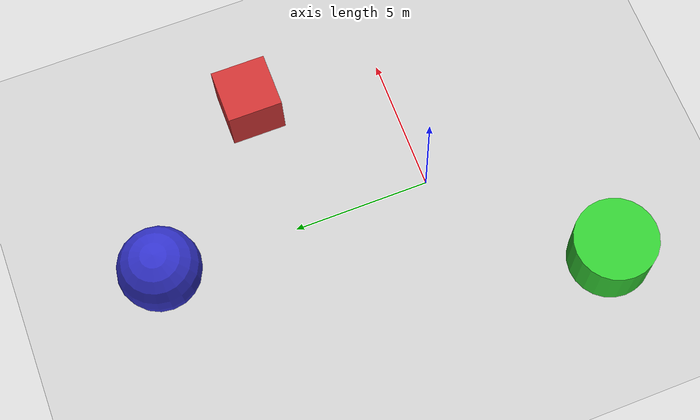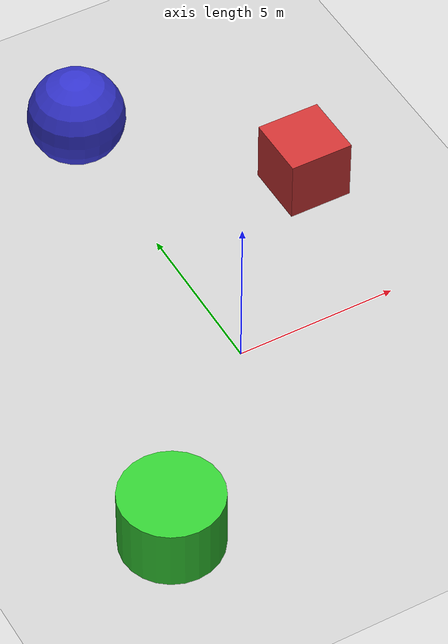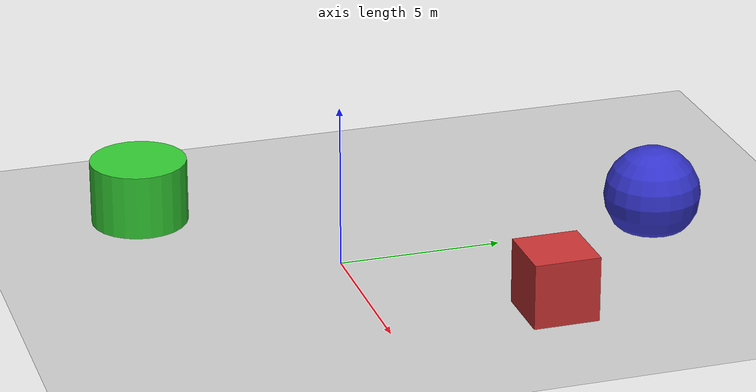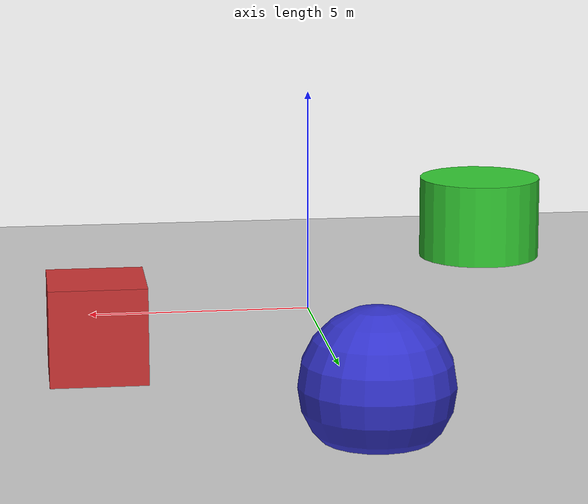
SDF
<?xml version="1.0" ?>
<sdf version="1.6">
  <world name="cluttered_world">
    <!-- A global light source -->
    <include>
      <uri>model://sun</uri>
    </include>

    <!-- A ground plane -->
    <include>
      <uri>model://ground_plane</uri>
    </include>

    <!-- Some obstacles for testing -->
    <model name="obstacle_1">
      <static>true</static>
      <pose>5 5 1 0 0 0</pose>
      <link name="link">
        <collision name="collision">
          <geometry>
            <box>
              <size>2 2 2</size>
            </box>
          </geometry>
        </collision>
        <visual name="visual">
          <geometry>
            <box>
              <size>2 2 2</size>
            </box>
          </geometry>
          <material>
            <ambient>0.8 0.2 0.2 1</ambient>
            <diffuse>0.8 0.2 0.2 1</diffuse>
          </material>
        </visual>
      </link>
    </model>

    <model name="obstacle_2">
      <static>true</static>
      <pose>-5 -5 1 0 0 0</pose>
      <link name="link">
        <collision name="collision">
          <geometry>
            <cylinder>
              <radius>1.5</radius>
              <length>2</length>
            </cylinder>
          </geometry>
        </collision>
        <visual name="visual">
          <geometry>
            <cylinder>
              <radius>1.5</radius>
              <length>2</length>
            </cylinder>
          </geometry>
          <material>
            <ambient>0.2 0.8 0.2 1</ambient>
            <diffuse>0.2 0.8 0.2 1</diffuse>
          </material>
        </visual>
      </link>
    </model>

    <model name="obstacle_3">
      <static>true</static>
      <pose>0 10 1 0 0 0</pose>
      <link name="link">
        <collision name="collision">
          <geometry>
            <sphere>
              <radius>1.5</radius>
            </sphere>
          </geometry>
        </collision>
        <visual name="visual">
          <geometry>
            <sphere>
              <radius>1.5</radius>
            </sphere>
          </geometry>
          <material>
            <ambient>0.2 0.2 0.8 1</ambient>
            <diffuse>0.2 0.2 0.8 1</diffuse>
          </material>
        </visual>
      </link>
    </model>

    <!-- Physics settings -->
    <physics type="ode">
      <max_step_size>0.001</max_step_size>
      <real_time_factor>1</real_time_factor>
      <real_time_update_rate>1000</real_time_update_rate>
      <gravity>0 0 -9.81</gravity>
    </physics>

    <!-- GUI settings -->
    <gui fullscreen='0'>
      <camera name='user_camera'>
        <pose>0 0 20 0 1.5708 0</pose>
        <view_controller>orbit</view_controller>
      </camera>
    </gui>
  </world>
</sdf>
